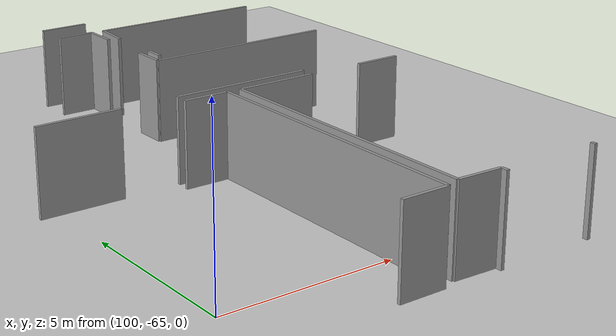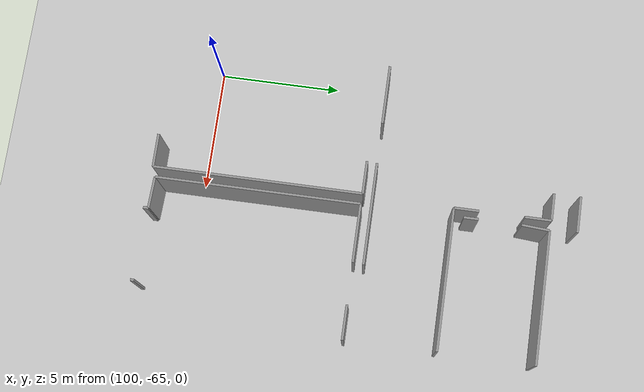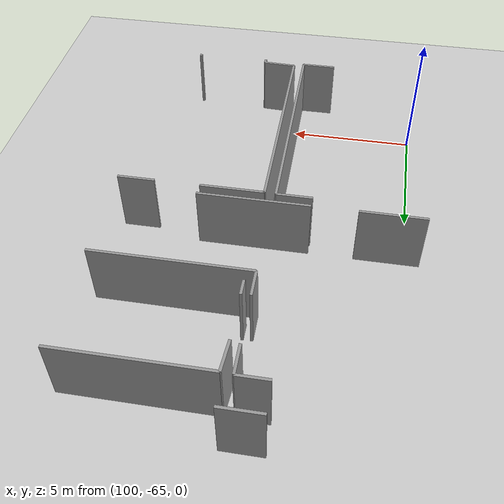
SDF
<sdf version="1.6">
 <world name="default">
  <model name="ground_plane">
   <static>1</static>
   <link name="link">
    <collision name="collision">
     <geometry><plane><normal>0 0 1</normal><size>100 100</size></plane></geometry>
     <surface><friction><ode><mu>100</mu><mu2>50</mu2></ode></friction></surface>
    </collision>
    <visual name="visual">
     <cast_shadows>0</cast_shadows>
     <geometry><plane><normal>0 0 1</normal><size>100 100</size></plane></geometry>
     <material>
      <script><uri>file://media/materials/scripts/gazebo.material</uri><name>Gazebo/Grey</name></script>
     </material>
    </visual>
   </link>
  </model>
  <model name="50036894">
   <static>1</static>
   <link name="Wall_548">
    <collision name="Wall_548_Collision">
     <geometry><box><size>1.11583792454 0.1 2.5</size></box></geometry>
     <pose>0.557918962271 0 1.25 0 0 0</pose>
    </collision>
    <visual name="Wall_548_Visual">
     <pose>0.557918962271 0 1.25 0 0 0</pose>
     <geometry><box><size>1.11583792454 0.1 2.5</size></box></geometry>
     <material>
      <script><uri>file://media/materials/scripts/gazebo.material</uri><name>Gazebo/Grey</name></script>
      <ambient>1 1 1 1</ambient>
     </material>
    </visual>
    <pose>226.726347089 -117.906535894 0 0 0 0.0</pose>
   </link>
   <link name="Wall_549">
    <collision name="Wall_549_Collision">
     <geometry><box><size>1.07754439577 0.1 2.5</size></box></geometry>
     <pose>0.538772197884 0 1.25 0 0 0</pose>
    </collision>
    <visual name="Wall_549_Visual">
     <pose>0.538772197884 0 1.25 0 0 0</pose>
     <geometry><box><size>1.07754439577 0.1 2.5</size></box></geometry>
     <material>
      <script><uri>file://media/materials/scripts/gazebo.material</uri><name>Gazebo/Grey</name></script>
      <ambient>1 1 1 1</ambient>
     </material>
    </visual>
    <pose>227.842185014 -117.906535894 0 0 0 -1.57079632679</pose>
   </link>
   <link name="Wall_550">
    <collision name="Wall_550_Collision">
     <geometry><box><size>1.02124530048 0.1 2.5</size></box></geometry>
     <pose>0.510622650242 0 1.25 0 0 0</pose>
    </collision>
    <visual name="Wall_550_Visual">
     <pose>0.510622650242 0 1.25 0 0 0</pose>
     <geometry><box><size>1.02124530048 0.1 2.5</size></box></geometry>
     <material>
      <script><uri>file://media/materials/scripts/gazebo.material</uri><name>Gazebo/Grey</name></script>
      <ambient>1 1 1 1</ambient>
     </material>
    </visual>
    <pose>227.842185014 -120.841189635 0 0 0 -1.57079632679</pose>
   </link>
   <link name="Wall_551">
    <collision name="Wall_551_Collision">
     <geometry><box><size>5.83786114158 0.1 2.5</size></box></geometry>
     <pose>2.91893057079 0 1.25 0 0 0</pose>
    </collision>
    <visual name="Wall_551_Visual">
     <pose>2.91893057079 0 1.25 0 0 0</pose>
     <geometry><box><size>5.83786114158 0.1 2.5</size></box></geometry>
     <material>
      <script><uri>file://media/materials/scripts/gazebo.material</uri><name>Gazebo/Grey</name></script>
      <ambient>1 1 1 1</ambient>
     </material>
    </visual>
    <pose>227.842185014 -121.862434936 0 0 0 0.0</pose>
   </link>
   <link name="Wall_555">
    <collision name="Wall_555_Collision">
     <geometry><box><size>4.21989615099 0.1 2.5</size></box></geometry>
     <pose>2.1099480755 0 1.25 0 0 0</pose>
    </collision>
    <visual name="Wall_555_Visual">
     <pose>2.1099480755 0 1.25 0 0 0</pose>
     <geometry><box><size>4.21989615099 0.1 2.5</size></box></geometry>
     <material>
      <script><uri>file://media/materials/scripts/gazebo.material</uri><name>Gazebo/Grey</name></script>
      <ambient>1 1 1 1</ambient>
     </material>
    </visual>
    <pose>230.62924383 -125.183827958 0 0 0 3.14159265359</pose>
   </link>
   <link name="Wall_556">
    <collision name="Wall_556_Collision">
     <geometry><box><size>2.46752341041 0.1 2.5</size></box></geometry>
     <pose>1.2337617052 0 1.25 0 0 0</pose>
    </collision>
    <visual name="Wall_556_Visual">
     <pose>1.2337617052 0 1.25 0 0 0</pose>
     <geometry><box><size>2.46752341041 0.1 2.5</size></box></geometry>
     <material>
      <script><uri>file://media/materials/scripts/gazebo.material</uri><name>Gazebo/Grey</name></script>
      <ambient>1 1 1 1</ambient>
     </material>
    </visual>
    <pose>224.707694844 -125.183827958 0 0 0 3.14159265359</pose>
   </link>
   <link name="Wall_565">
    <collision name="Wall_565_Collision">
     <geometry><box><size>5.47014182554 0.1 2.5</size></box></geometry>
     <pose>2.73507091277 0 1.25 0 0 0</pose>
    </collision>
    <visual name="Wall_565_Visual">
     <pose>2.73507091277 0 1.25 0 0 0</pose>
     <geometry><box><size>5.47014182554 0.1 2.5</size></box></geometry>
     <material>
      <script><uri>file://media/materials/scripts/gazebo.material</uri><name>Gazebo/Grey</name></script>
      <ambient>1 1 1 1</ambient>
     </material>
    </visual>
    <pose>228.25808824 -117.940011032 0 0 0 0.0</pose>
   </link>
   <link name="Wall_568">
    <collision name="Wall_568_Collision">
     <geometry><box><size>0.600270083498 0.1 2.5</size></box></geometry>
     <pose>0.300135041749 0 1.25 0 0 0</pose>
    </collision>
    <visual name="Wall_568_Visual">
     <pose>0.300135041749 0 1.25 0 0 0</pose>
     <geometry><box><size>0.600270083498 0.1 2.5</size></box></geometry>
     <material>
      <script><uri>file://media/materials/scripts/gazebo.material</uri><name>Gazebo/Grey</name></script>
      <ambient>1 1 1 1</ambient>
     </material>
    </visual>
    <pose>228.176936391 -121.42497575 0 0 0 1.57079632679</pose>
   </link>
   <link name="Wall_569">
    <collision name="Wall_569_Collision">
     <geometry><box><size>1.13674389587 0.1 2.5</size></box></geometry>
     <pose>0.568371947936 0 1.25 0 0 0</pose>
    </collision>
    <visual name="Wall_569_Visual">
     <pose>0.568371947936 0 1.25 0 0 0</pose>
     <geometry><box><size>1.13674389587 0.1 2.5</size></box></geometry>
     <material>
      <script><uri>file://media/materials/scripts/gazebo.material</uri><name>Gazebo/Grey</name></script>
      <ambient>1 1 1 1</ambient>
     </material>
    </visual>
    <pose>228.176936391 -119.073854523 0 0 0 1.49934580959</pose>
   </link>
   <link name="Wall_572">
    <collision name="Wall_572_Collision">
     <geometry><box><size>1.361829467 0.1 2.5</size></box></geometry>
     <pose>0.680914733499 0 1.25 0 0 0</pose>
    </collision>
    <visual name="Wall_572_Visual">
     <pose>0.680914733499 0 1.25 0 0 0</pose>
     <geometry><box><size>1.361829467 0.1 2.5</size></box></geometry>
     <material>
      <script><uri>file://media/materials/scripts/gazebo.material</uri><name>Gazebo/Grey</name></script>
      <ambient>1 1 1 1</ambient>
     </material>
    </visual>
    <pose>226.386523721 -125.596180791 0 0 0 0.0</pose>
   </link>
   <link name="Wall_573">
    <collision name="Wall_573_Collision">
     <geometry><box><size>8.61249358076 0.1 2.5</size></box></geometry>
     <pose>4.30624679038 0 1.25 0 0 0</pose>
    </collision>
    <visual name="Wall_573_Visual">
     <pose>4.30624679038 0 1.25 0 0 0</pose>
     <geometry><box><size>8.61249358076 0.1 2.5</size></box></geometry>
     <material>
      <script><uri>file://media/materials/scripts/gazebo.material</uri><name>Gazebo/Grey</name></script>
      <ambient>1 1 1 1</ambient>
     </material>
    </visual>
    <pose>227.748353188 -125.596180791 0 0 0 -1.57079632679</pose>
   </link>
   <link name="Wall_574">
    <collision name="Wall_574_Collision">
     <geometry><box><size>1.36943745285 0.1 2.5</size></box></geometry>
     <pose>0.684718726423 0 1.25 0 0 0</pose>
    </collision>
    <visual name="Wall_574_Visual">
     <pose>0.684718726423 0 1.25 0 0 0</pose>
     <geometry><box><size>1.36943745285 0.1 2.5</size></box></geometry>
     <material>
      <script><uri>file://media/materials/scripts/gazebo.material</uri><name>Gazebo/Grey</name></script>
      <ambient>1 1 1 1</ambient>
     </material>
    </visual>
    <pose>227.748353188 -134.208674372 0 0 0 3.14159265359</pose>
   </link>
   <link name="Wall_576">
    <collision name="Wall_576_Collision">
     <geometry><box><size>8.43269151519 0.1 2.5</size></box></geometry>
     <pose>4.2163457576 0 1.25 0 0 0</pose>
    </collision>
    <visual name="Wall_576_Visual">
     <pose>4.2163457576 0 1.25 0 0 0</pose>
     <geometry><box><size>8.43269151519 0.1 2.5</size></box></geometry>
     <material>
      <script><uri>file://media/materials/scripts/gazebo.material</uri><name>Gazebo/Grey</name></script>
      <ambient>1 1 1 1</ambient>
     </material>
    </visual>
    <pose>228.169328405 -134.052710662 0 0 0 1.57079632679</pose>
   </link>
   <link name="Wall_577">
    <collision name="Wall_577_Collision">
     <geometry><box><size>2.42441149059 0.1 2.5</size></box></geometry>
     <pose>1.2122057453 0 1.25 0 0 0</pose>
    </collision>
    <visual name="Wall_577_Visual">
     <pose>1.2122057453 0 1.25 0 0 0</pose>
     <geometry><box><size>2.42441149059 0.1 2.5</size></box></geometry>
     <material>
      <script><uri>file://media/materials/scripts/gazebo.material</uri><name>Gazebo/Grey</name></script>
      <ambient>1 1 1 1</ambient>
     </material>
    </visual>
    <pose>228.169328405 -125.620019147 0 0 0 0.0</pose>
   </link>
   <link name="Wall_578">
    <collision name="Wall_578_Collision">
     <geometry><box><size>1.41508536794 0.1 2.5</size></box></geometry>
     <pose>0.707542683971 0 1.25 0 0 0</pose>
    </collision>
    <visual name="Wall_578_Visual">
     <pose>0.707542683971 0 1.25 0 0 0</pose>
     <geometry><box><size>1.41508536794 0.1 2.5</size></box></geometry>
     <material>
      <script><uri>file://media/materials/scripts/gazebo.material</uri><name>Gazebo/Grey</name></script>
      <ambient>1 1 1 1</ambient>
     </material>
    </visual>
    <pose>232.310608702 -125.620019147 0 0 0 0.0</pose>
   </link>
   <link name="Wall_581">
    <collision name="Wall_581_Collision">
     <geometry><box><size>0.15114531887 0.1 2.5</size></box></geometry>
     <pose>0.0755726594349 0 1.25 0 0 0</pose>
    </collision>
    <visual name="Wall_581_Visual">
     <pose>0.0755726594349 0 1.25 0 0 0</pose>
     <geometry><box><size>0.15114531887 0.1 2.5</size></box></geometry>
     <material>
      <script><uri>file://media/materials/scripts/gazebo.material</uri><name>Gazebo/Grey</name></script>
      <ambient>1 1 1 1</ambient>
     </material>
    </visual>
    <pose>232.457696429 -134.168352047 0 0 0 -1.57079632679</pose>
   </link>
   <link name="Wall_582">
    <collision name="Wall_582_Collision">
     <geometry><box><size>0.214291601418 0.1 2.5</size></box></geometry>
     <pose>0.107145800709 0 1.25 0 0 0</pose>
    </collision>
    <visual name="Wall_582_Visual">
     <pose>0.107145800709 0 1.25 0 0 0</pose>
     <geometry><box><size>0.214291601418 0.1 2.5</size></box></geometry>
     <material>
      <script><uri>file://media/materials/scripts/gazebo.material</uri><name>Gazebo/Grey</name></script>
      <ambient>1 1 1 1</ambient>
     </material>
    </visual>
    <pose>229.482973962 -134.319497366 0 0 0 1.57079632679</pose>
   </link>
   <link name="Wall_583">
    <collision name="Wall_583_Collision">
     <geometry><box><size>1.31469402684 0.1 2.5</size></box></geometry>
     <pose>0.657347013418 0 1.25 0 0 0</pose>
    </collision>
    <visual name="Wall_583_Visual">
     <pose>0.657347013418 0 1.25 0 0 0</pose>
     <geometry><box><size>1.31469402684 0.1 2.5</size></box></geometry>
     <material>
      <script><uri>file://media/materials/scripts/gazebo.material</uri><name>Gazebo/Grey</name></script>
      <ambient>1 1 1 1</ambient>
     </material>
    </visual>
    <pose>229.482973962 -134.105205764 0 0 0 3.10165251489</pose>
   </link>
   <link name="Wall_589">
    <collision name="Wall_589_Collision">
     <geometry><box><size>1.48355724058 0.1 2.5</size></box></geometry>
     <pose>0.741778620292 0 1.25 0 0 0</pose>
    </collision>
    <visual name="Wall_589_Visual">
     <pose>0.741778620292 0 1.25 0 0 0</pose>
     <geometry><box><size>1.48355724058 0.1 2.5</size></box></geometry>
     <material>
      <script><uri>file://media/materials/scripts/gazebo.material</uri><name>Gazebo/Grey</name></script>
      <ambient>1 1 1 1</ambient>
     </material>
    </visual>
    <pose>228.192152363 -116.822905109 0 0 0 3.14159265359</pose>
   </link>
   <pose>-122.8 67.3347215794 0 0 0 0</pose>
  </model>
 </world>
</sdf>
